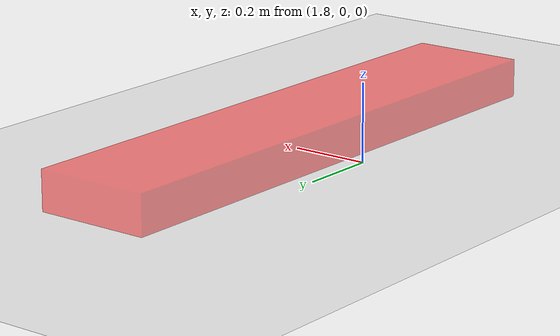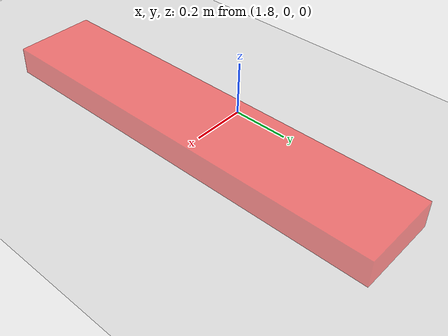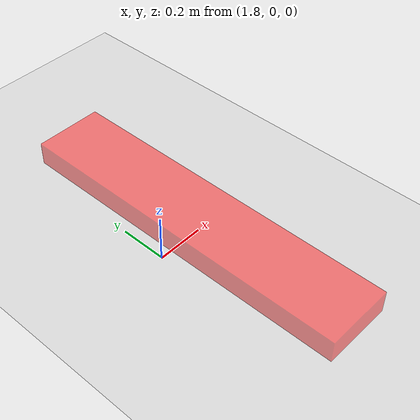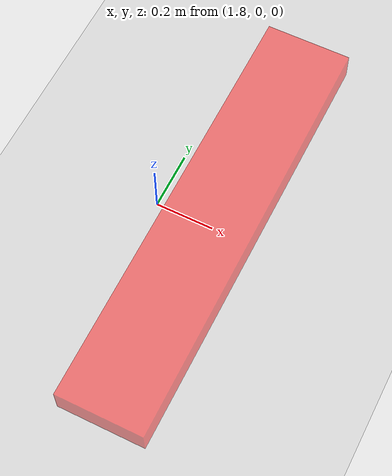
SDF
<?xml version="1.0" ?>
<sdf version="1.6">
  <world name="default">

    <include>
      <uri>model://ground_plane</uri>
    </include>

    <include>
      <uri>model://sun</uri>
    </include>

    <include>
      <uri>/home/cesar/aescape_catkin_ws/src/franka_panda_gazebo/models/human</uri>
      <pose>2 0 0 0 0 0</pose>
    </include>

    <physics type="ode">
      <real_time_update_rate>1000.0</real_time_update_rate>
    </physics>

  </world>
</sdf>

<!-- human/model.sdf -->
<sdf version='1.6'>
  <model name='human'>
    <link name='link'>
      <inertial>
        <mass>450</mass>
        <inertia>
          <ixx>75</ixx>
          <ixy>0</ixy>
          <ixz>0</ixz>
          <iyy>75</iyy>
          <iyz>0</iyz>
          <izz>75</izz>
        </inertia>
        <pose frame=''>0 0 0 0 -0 0</pose>
      </inertial>
      <self_collide>0</self_collide>
      <enable_wind>0</enable_wind>
      <kinematic>0</kinematic>
      <pose frame=''>0 0 0 0 -0 0</pose>
      <gravity>1</gravity>
      <visual name='visual'>
        <geometry>
          <box>
            <size>0.3 1.5 0.2</size>
          </box>
        </geometry>
        <material>
          <script>
            <name>Gazebo/Grey</name>
            <uri>file://media/materials/scripts/gazebo.material</uri>
          </script>
          <shader type='pixel'>
            <normal_map>__default__</normal_map>
          </shader>
          <ambient>1 0 0 0</ambient>
          <diffuse>0.7 0.7 0.7 1</diffuse>
          <specular>0.01 0.01 0.01 1</specular>
          <emissive>0 0 0 1</emissive>
        </material>
        <pose frame=''>0 0 0 0 -0 0</pose>
        <transparency>0.5</transparency>
        <cast_shadows>1</cast_shadows>
      </visual>
      <collision name='collision'>
        <laser_retro>0</laser_retro>
        <max_contacts>10</max_contacts>
        <pose frame=''>0 0 0 0 -0 0</pose>
        <geometry>
          <box>
            <size>0.3 1.5 0.2</size>
          </box>
        </geometry>
        <surface>
          <friction>
            <ode>
              <mu>1</mu>
              <mu2>1</mu2>
              <fdir1>0 0 0</fdir1>
              <slip1>1</slip1>
              <slip2>1</slip2>
            </ode>
            <torsional>
              <coefficient>1</coefficient>
              <patch_radius>0</patch_radius>
              <surface_radius>0</surface_radius>
              <use_patch_radius>1</use_patch_radius>
              <ode>
                <slip>0</slip>
              </ode>
            </torsional>
          </friction>
          <bounce>
            <restitution_coefficient>0</restitution_coefficient>
            <threshold>1e+06</threshold>
          </bounce>
          <contact>
            <collide_without_contact>1</collide_without_contact>
            <collide_without_contact_bitmask>1</collide_without_contact_bitmask>
            <collide_bitmask>1</collide_bitmask>
            <ode>
              <soft_cfm>0</soft_cfm>
              <soft_erp>0.2</soft_erp>
              <kp>1e+13</kp>
              <kd>1</kd>
              <max_vel>0.01</max_vel>
              <min_depth>0</min_depth>
            </ode>
            <bullet>
              <split_impulse>1</split_impulse>
              <split_impulse_penetration_threshold>-0.01</split_impulse_penetration_threshold>
              <soft_cfm>0</soft_cfm>
              <soft_erp>0.2</soft_erp>
              <kp>1e+13</kp>
              <kd>1</kd>
            </bullet>
          </contact>
        </surface>
      </collision>
    </link>
    <static>0</static>
    <allow_auto_disable>1</allow_auto_disable>
  </model>
</sdf>
